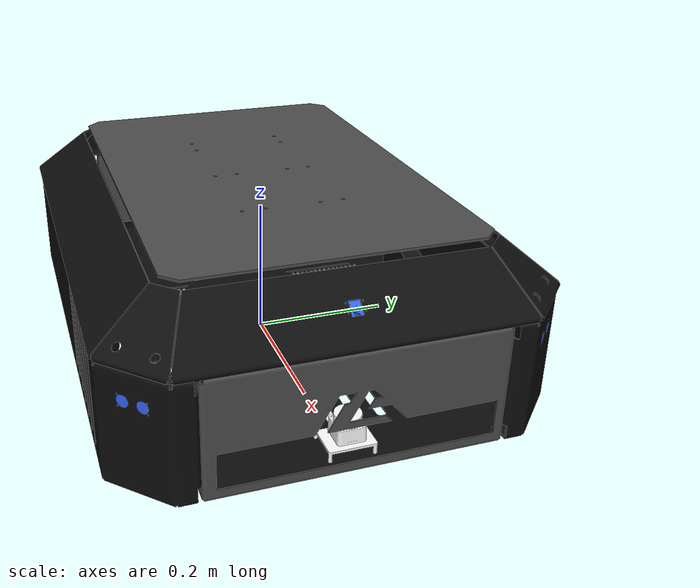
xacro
<?xml version="1.0"?>
<robot xmlns:xacro="http://www.ros.org/wiki/xacro" name="logic_robot">

    <xacro:include filename="common_prob.urdf.xacro"/>
    <xacro:include filename="chassis.urdf.xacro"/>
    <xacro:include filename="wheels_mobile_robot.urdf.xacro"/>
    <xacro:include filename="sensors.urdf.xacro"/>
     <xacro:include filename="ros2_control.urdf.xacro" />

</robot>

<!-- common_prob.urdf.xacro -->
<robot xmlns:xacro="http://www.ros.org/wiki/xacro">

    <material name="Blue_body">
        <color rgba="0.39 0.58 0.93 1"/>
    </material>

    <material name="Grey_body">
        <color rgba="0.3 0.3 0.3 1"/>
    </material>

    <material name="Blue_tech">
        <color rgba="0.2 0.4 1 1"/>
    </material>

    <material name="Black_wheels">
        <color rgba="0.05 0.05 0.05 1"/>
    </material>

    <material name="white">
        <color rgba="1.0 1.0 1.0 1.0"/>
    </material>

    <material name="Orange_body">
        <color rgba="1.0 0.45 0.0 1.0"/>
    </material>

    <xacro:macro name="sphere_inertia" params="r m xyz rpy">
        <inertial>
            <origin xyz="${xyz}" rpy="${rpy}"/>
            <mass value="${m}"/>
            <inertia ixx="${(2.0/5.0) * (m*r*r)}" ixy="0.0" ixz="0.0"
                     iyy="${(2.0/5.0) * (m*r*r)}" iyz="0.0"
                     izz="${(2.0/5.0) * (m*r*r)}"/>
        </inertial>

    </xacro:macro>

</robot>

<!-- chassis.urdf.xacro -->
<robot xmlns:xacro="http://www.ros.org/wiki/xacro">

    <link name="base_footprint">
        <origin xyz="0.0 0.0 0.0" rpy="0.0 0.0 0.0"/>
    </link>

    <link name="base_link">
        <visual>
            <origin xyz="0 0 0" rpy="0 0 0" />
            <geometry>
                <mesh filename="package://robot_description/meshes/base_link.STL" />
            </geometry>
            <material name="Black_wheels"/>
        </visual>
        <collision>
            <origin xyz="0 0 0" rpy="0 0 0" />
            <geometry>
                <box size="0.0 0.0 0.0"/>
            </geometry>
        </collision>
        <inertial>
            <mass value="6.1834389040098" />
            <origin xyz="0 0 0" />
            <inertia ixx="0.172811693426198" ixy="0.172811693426198" ixz="0.000146852915258599"
                     iyy="0.329853029043022" iyz="-0.0000005106111186954"
                     izz="0.502514023614247" />
        </inertial>
    </link>

    <link name="front_side_link">
        <visual>
            <origin xyz="0 0 0" rpy="1.5708 0 -1.5708" />
            <geometry>
                <mesh filename="package://robot_description/meshes/FRONTFACE.STL"/>
            </geometry>
            <material name="Grey_body"/>
        </visual>
        <collision>
            <origin xyz="0 0 0" rpy="1.5708 0 -1.5708" />
            <geometry>
                <box size="0.0 0.0 0.0"/>
            </geometry>
        </collision>
        <inertial>
            <mass value="0.943263635545501" />
            <origin xyz="0 0 0" />
            <inertia ixx="0.00291641918840626" ixy="0.0000190996145270648" ixz="0.00000071419602127283"
                     iyy="0.0140654484607705" iyz="0.000034925471644662"
                     izz="0.0169244457647262" />
        </inertial>
    </link>

    <link name="back_side_link">
        <visual>
            <origin xyz="0 0 0" rpy="-1.5708 0 1.5708" />
            <geometry>
                <mesh filename="package://robot_description/meshes/BACKFACE.STL"/>
            </geometry>
            <material name="Grey_body"/>
        </visual>
        <collision>
            <origin xyz="0 0 0" rpy="0 0 0" />
            <geometry>
                <box size="0.0 0.0 0.0"/>
            </geometry>
        </collision>
        <inertial>
            <mass value="1.21964784215122" />
            <origin xyz="0 0 0" />
            <inertia ixx="0.00351494178324154" ixy="-0.000000012069310846" ixz="0.00000002879626633959"
                     iyy="0.0164769667498377" iyz="-0.00000087575048906592"
                     izz="0.352922362443128" />
        </inertial>
    </link>

    <link name="right_side_link">
        <visual>
            <origin xyz="0 0 0" rpy="1.5708 0 0" />
            <geometry>
                <mesh filename="package://robot_description/meshes/RIGHTSIDE.STL"/>
            </geometry>
            <material name="Black_wheels"/>
        </visual>
        <collision>
            <origin xyz="0 0 0" rpy="0 0 0" />
            <geometry>
                <box size="0.0 0.0 0.0"/>
            </geometry>
        </collision>
        <inertial>
            <mass value="2.59245784828295" />
            <origin xyz="0 0 0" />
            <inertia ixx="0.0097385527877872" ixy="0.0000705335602570311" ixz="0.000535987354813434"
                     iyy="0.16832306413205" iyz="0.0000107962961975476"
                     izz="0.173820773325926" />
        </inertial>
    </link>

    <link name="left_side_link">
        <visual>
            <origin xyz="0 0 0" rpy="1.5708 0 3.1416" />
            <geometry>
                <mesh filename="package://robot_description/meshes/LEFTSIDE.STL"/>
            </geometry>
            <material name="Black_wheels"/>
        </visual>
        <collision>
            <origin xyz="0 0 0" rpy="0 0 0" />
            <geometry>
                <box size="0.0 0.0 0.0"/>
            </geometry>
        </collision>
        <inertial>
            <mass value="2.59245784828295" />
            <origin xyz="0 0 0" />
            <inertia ixx="0.0097385527877872" ixy="0.0000705335602570311" ixz="0.000535987354813434"
                     iyy="0.16832306413205" iyz="0.0000107962961975476"
                     izz="0.173820773325926" />
        </inertial>
    </link>

    <link name="flange_link">
        <visual>
            <origin xyz="0 0 0" rpy="1.5708 0 0" />
            <geometry>
                <mesh filename="package://robot_description/meshes/FLANGE.STL"/>
            </geometry>
            <material name="Black_wheels"/>
        </visual>
        <collision>
            <origin xyz="0 0 0" rpy="0 0 0" />
            <geometry>
                <box size="0.0 0.0 0.0"/>
            </geometry>
        </collision>
        <inertial>
            <mass value="4.55743149884064" />
            <origin xyz="0 0 0" />
            <inertia ixx="0.224259288011278" ixy="0.0000146668870126123" ixz="-0.00000045139077650599"
                     iyy="0.572824908778646" iyz="-6.30334977764897E-016"
                     izz="0.352922362443128" />
        </inertial>
    </link>

    <link name="top_lift_link">
        <visual>
            <origin xyz="0 0 0" rpy="1.5707963267949 0 3.14159265358979" />
            <geometry>
                <mesh filename="package://robot_description/meshes/TOPBASE.STL"/>
            </geometry>
            <material name="Grey_body"/>
        </visual>
        <collision>
            <origin xyz="0 0 0" rpy="0 0 0" />
            <geometry>
                <box size="0.0 0.0 0.0"/>
            </geometry>
        </collision>
        <inertial>
            <mass value="4.55743149884064" />
            <origin xyz="0 0 0" />
            <inertia ixx="0.172811693426198" ixy="0.000287772429697471" ixz="0.000146852915258599"
                     iyy="0.329853029043022" iyz="-0.0000005106111186954"
                     izz="0.502514023614247" />
        </inertial>
    </link>

    <joint name="base_base_joint" type="fixed">
        <parent link="base_footprint"/>
        <child link="base_link"/>
        <origin xyz="0.0 0.0 0.015855" rpy="0.0 0.0 0.0"/>
    </joint>

    <joint name="base_front_joint" type="fixed">
        <parent link="base_link"/>
        <child link="front_side_link"/>
        <origin xyz="0.388 0.0 0.0" rpy="0.0 0.0 0.0"/>
    </joint>

    <joint name="base_back_joint" type="fixed">
        <parent link="base_link"/>
        <child link="back_side_link"/>
        <origin xyz="-0.388 0.0 0.0" rpy="0.0 0.0 0.0"/>
    </joint>

    <joint name="base_right_joint" type="fixed">
        <parent link="base_link"/>
        <child link="right_side_link"/>
        <origin xyz=" 0.0 -0.2902 0.161" rpy="0.0 0.0 0.0"/>
    </joint>

    <joint name="base_left_joint" type="fixed">
        <parent link="base_link"/>
        <child link="left_side_link"/>
        <origin xyz=" 0.0 0.2902 0.161" rpy="0.0 0.0 0.0"/>
    </joint>

    <joint name="base_flange_joint" type="fixed">
        <parent link="base_link"/>
        <child link="flange_link"/>
        <origin xyz="-0.00073426 -0.00062835 0.163" rpy="0.0 0.0 0.0"/>
    </joint>

    <joint name="base_top_joint" type="fixed">
        <parent link="base_link"/>
        <child link="top_lift_link"/>
        <origin xyz="0.0 0.0 0.2374" rpy="0.0 0.0 0.0"/>
    </joint>

</robot>

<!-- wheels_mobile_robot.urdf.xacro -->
<robot xmlns:xacro="http://www.ros.org/wiki/xacro">

    <link name="right_wheel_link">
        <visual>
            <origin xyz="0 0 0" rpy="0 0 0" />
            <geometry>
                <mesh filename="package://robot_description/meshes/WHEELRIGHT.STL" />
            </geometry>
            <material name="Black_wheels"/>
        </visual>
        <collision>
            <origin xyz="0 0 0" rpy="0 0 0" />
            <geometry>
                <cylinder radius="0.05" length="0.03"/>
            </geometry>
        </collision>
        <inertial>
            <mass value="0.27052" />
            <origin xyz="0 0 0" />
            <inertia ixx="0.00020379" ixy="1.8231E-022" ixz="-1.0447E-037"
                     iyy="0.00036168" iyz="6.2575E-022"
                     izz="0.00020379" />
        </inertial>
    </link>

    <link name="left_wheel_link">
        <visual>
            <origin xyz="0 0 0" rpy="0 0 0" />
            <geometry>
                <mesh filename="package://robot_description/meshes/WHEELRIGHT.STL" />
            </geometry>
            <material name="Black_wheels"/>
        </visual>
        <collision>
            <origin xyz="0 0 0" rpy="0 0 0" />
            <geometry>
                <cylinder radius="0.05" length="0.03"/>
            </geometry>
        </collision>
        <inertial>
            <mass value="0.27052" />
            <origin xyz="0 0 0" />
            <inertia ixx="0.00020379" ixy="1.8231E-022" ixz="-1.0447E-037"
                     iyy="0.00036168" iyz="6.2575E-022"
                     izz="0.00020379" />
        </inertial>
    </link>

    <link name="front_caster_wheel_link">
        <visual>
            <origin xyz="0 0 0" rpy="0 0 0" />
            <geometry>
                <sphere radius="0.0079275"/>
            </geometry>
            <material name="Black_wheels"/>
        </visual>
        <collision>
            <origin xyz="0 0 0" rpy="0 0 0" />
            <geometry>
                <sphere radius="0.0079275"/>
            </geometry>
        </collision>
        <xacro:sphere_inertia m="2.5" r="${0.0079275/2.0}"
                              xyz="0 0 0" rpy="0 0 0"  />
    </link>

    <link name="back_caster_wheel_link">
        <visual>
            <origin xyz="0 0 0" rpy="0 0 0" />
            <geometry>
                <sphere radius="0.0079275"/>
            </geometry>
            <material name="Black_wheels"/>
        </visual>
        <collision>
            <origin xyz="0 0 0" rpy="0 0 0" />
            <geometry>
                <sphere radius="0.0079275"/>
            </geometry>
        </collision>
        <xacro:sphere_inertia m="2.5" r="${0.0079275/2.0}"
                              xyz="0 0 0" rpy="0 0 0"  />
    </link>

    <joint name="base_right_wheel_joint" type="continuous">
        <parent link="base_link"/>
        <child link="right_wheel_link"/>
        <axis xyz="0 1 0"/>
        <origin xyz="0.00031675 -0.243 0.034145" rpy="0 0 0"/>
    </joint>

    <joint name="base_left_wheel_joint" type="continuous">
        <parent link="base_link"/>
        <child link="left_wheel_link"/>
        <axis xyz="0 1 0"/>
        <origin xyz="0.00031675 0.243 0.034145" rpy="0 0 0"/>
    </joint>

    <joint name="base_caster_front_joint" type="fixed">
        <parent link="base_link"/>
        <child link="front_caster_wheel_link"/>
        <origin xyz="0.344 0.0 -0.0094275" rpy="0.0 0.0 0.0"/>
    </joint>

    <joint name="base_caster_back_joint" type="fixed">
        <parent link="base_link"/>
        <child link="back_caster_wheel_link"/>
        <origin xyz="-0.344 0.0 -0.0094275" rpy="0.0 0.0 0.0"/>
    </joint>

</robot>

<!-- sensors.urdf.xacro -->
<robot xmlns:xacro="http://www.ros.org/wiki/xacro">

    <link name="Camera_link">
        <visual>
            <origin xyz="0 0 0" rpy="1.5708 -0.87266 0" />
            <geometry>
                <mesh filename="package://robot_description/meshes/CAMRAS.STL" />
            </geometry>
            <material name="Blue_tech"/>
        </visual>
        <collision>
            <origin xyz="0 0 0" rpy="0 0 0" />
            <geometry>
                <box size="0.0 0.0 0.0"/>
            </geometry>
        </collision>
        <inertial>
            <mass value="0.00661422961856379" />
            <origin xyz="0 0 0" />
            <inertia ixx="0.00000026238959561215" ixy="5.1351372427292E-021" ixz="8.28770144570259E-022"
                     iyy="0.00000140030188192852" iyz="-2.48138686021216E-023"
                     izz="0.00000141481758097034" />
        </inertial>
    </link>

    <link name="base_laser">
        <visual>
            <origin xyz="0 0 0" rpy="1.5708 0 -1.5708" />
            <geometry>
                <mesh filename="package://robot_description/meshes/LIDAR.STL" />
            </geometry>
            <material name="white"/>
        </visual>
        <collision>
            <origin xyz="0 0 0" rpy="0 0 0" />
            <geometry>
                <box size="0 0 0" />
            </geometry>
        </collision>
        <inertial>
            <mass value="0.0509760361388544" />
            <origin xyz="0 0 0" />
            <inertia ixx="0.0000100879171025046" ixy="0.00000001034020018237" ixz="0.00000004137562832679"
                     iyy="0.0000146859205832974" iyz="-0.00000004240420956506"
                     izz="0.0000117806458816188" />
        </inertial>
    </link>

    <link name="esp_link">
        <visual>
            <origin xyz="0 0 0" rpy="0 0 0" />
            <geometry>
                <box size="0.018 0.0255 0.0031" />
            </geometry>
            <material name="Blue_tech"/>
        </visual>
        <collision>
            <origin xyz="0 0 0" rpy="0 0 0" />
            <geometry>
                <box size="0.018 0.0255 0.0031" />
            </geometry>
        </collision>
        <inertial>
            <mass value="1.0" />
            <origin xyz="0 0 0" />
            <inertia ixx="1.0" ixy="1.0" ixz="1.0" iyy="1.0" iyz="0.0" izz="1.0" />
        </inertial>
    </link>

    <link name="ultra1_link">
        <visual>
            <origin xyz="0 0 0" rpy="0 0 -0.785398163397444" />
            <geometry>
                <mesh filename="package://robot_description/meshes/ULTRASONIC1.STL" />
            </geometry>
            <material name="Blue_tech"/>
        </visual>
        <collision>
            <origin xyz="0 0 0" rpy="0 0 0" />
            <geometry>
                <box size="0.0 0.0 0.0"/>
            </geometry>
        </collision>
        <inertial>
            <mass value="0.00661422961856379" />
            <origin xyz="0 0 0" />
            <inertia ixx="0.00000026238959561215" ixy="5.1351372427292E-021" ixz="8.28770144570259E-022"
                     iyy="0.00000140030188192852" iyz="-2.48138686021216E-023"
                     izz="0.00000141481758097034" />
        </inertial>
    </link>

    <link name="ultra2_link">
        <visual>
            <origin xyz="0 0 0" rpy="0 0 2.35619449019235" />
            <geometry>
                <mesh filename="package://robot_description/meshes/ULTRASONIC1.STL" />
            </geometry>
            <material name="Blue_tech"/>
        </visual>
        <collision>
            <origin xyz="0 0 0" rpy="0 0 0" />
            <geometry>
                <box size="0.0 0.0 0.0"/>
            </geometry>
        </collision>
        <inertial>
            <mass value="0.00661422961856379" />
            <origin xyz="0 0 0" />
            <inertia ixx="0.00000026238959561215" ixy="5.1351372427292E-021" ixz="8.28770144570259E-022"
                     iyy="0.00000140030188192852" iyz="-2.48138686021216E-023"
                     izz="0.00000141481758097034" />
        </inertial>
    </link>

    <link name="ultra3_link">
        <visual>
            <origin xyz="0 0 0" rpy="3.14159265358979 0 -2.35619449019235" />
            <geometry>
                <mesh filename="package://robot_description/meshes/ULTRASONIC1.STL" />
            </geometry>
            <material name="Blue_tech"/>
        </visual>
        <collision>
            <origin xyz="0 0 0" rpy="0 0 0" />
            <geometry>
                <box size="0.0 0.0 0.0"/>
            </geometry>
        </collision>
        <inertial>
            <mass value="0.00661422961856379" />
            <origin xyz="0 0 0" />
            <inertia ixx="0.00000026238959561215" ixy="5.1351372427292E-021" ixz="8.28770144570259E-022"
                     iyy="0.00000140030188192852" iyz="-2.48138686021216E-023"
                     izz="0.00000141481758097034" />
        </inertial>
    </link>

    <link name="ultra4_link">
        <visual>
            <origin xyz="0 0 0" rpy="-3.14159265358979 0 0.785398163397446" />
            <geometry>
                <mesh filename="package://robot_description/meshes/ULTRASONIC1.STL" />
            </geometry>
            <material name="Blue_tech"/>
        </visual>
        <collision>
            <origin xyz="0 0 0" rpy="0 0 0" />
            <geometry>
                <box size="0.0 0.0 0.0"/>
            </geometry>
        </collision>
        <inertial>
            <mass value="0.00661422961856379" />
            <origin xyz="0 0 0" />
            <inertia ixx="0.00000026238959561215" ixy="5.1351372427292E-021" ixz="8.28770144570259E-022"
                     iyy="0.00000140030188192852" iyz="-2.48138686021216E-023"
                     izz="0.00000141481758097034" />
        </inertial>
    </link>

    <joint name="base_camera_joint" type="fixed">
        <parent link="base_link"/>
        <child link="Camera_link"/>
        <origin xyz="0.35641 0.0 0.19554" rpy="0.0 0.0 0.0"/>
    </joint>

    <joint name="base_scan_joint" type="fixed">
        <parent link="base_link"/>
        <child link="base_laser"/>
        <origin xyz="0.344 0.0 0.014" rpy="0.0 0.0 0.0"/>
    </joint>

    <joint name="base_ultra1_joint" type="fixed">
        <parent link="base_link"/>
        <child link="ultra1_link"/>
        <origin xyz="0.344057611844581 0.245757611844575 0.122" rpy="0.0 0.0 0.0"/>
    </joint>

    <joint name="base_ultra2_joint" type="fixed">
        <parent link="base_link"/>
        <child link="ultra2_link"/>
        <origin xyz="-0.344057611844581 -0.245757611844575 0.122" rpy="0.0 0.0 0.0"/>
    </joint>

    <joint name="base_ultra3_joint" type="fixed">
        <parent link="base_link"/>
        <child link="ultra3_link"/>
        <origin xyz="-0.344057611844581 0.245757611844575 0.122" rpy="0.0 0.0 0.0"/>
    </joint>

    <joint name="base_ultra4_joint" type="fixed">
        <parent link="base_link"/>
        <child link="ultra4_link"/>
        <origin xyz="0.344057611844581 -0.245757611844575 0.122" rpy="0.0 0.0 0.0"/>
    </joint>

    <joint name="base_esp_joint" type="fixed">
        <parent link="base_link"/>
        <child link="esp_link"/>
        <origin xyz="0.0 0.0 0.00155" rpy="0.0 0.0 0.0"/>
    </joint>

</robot>
